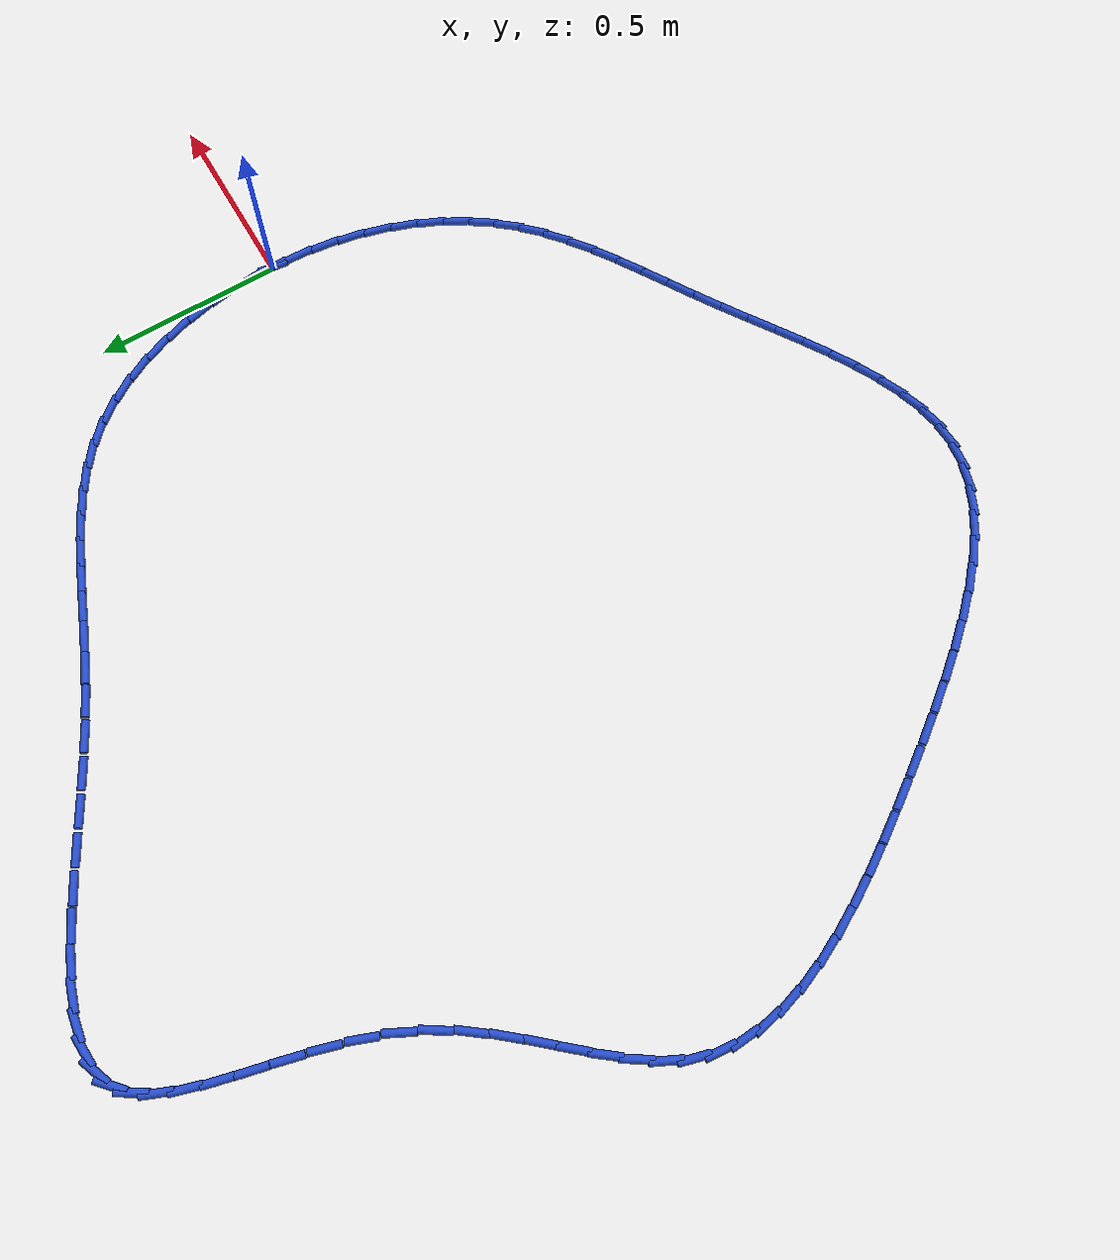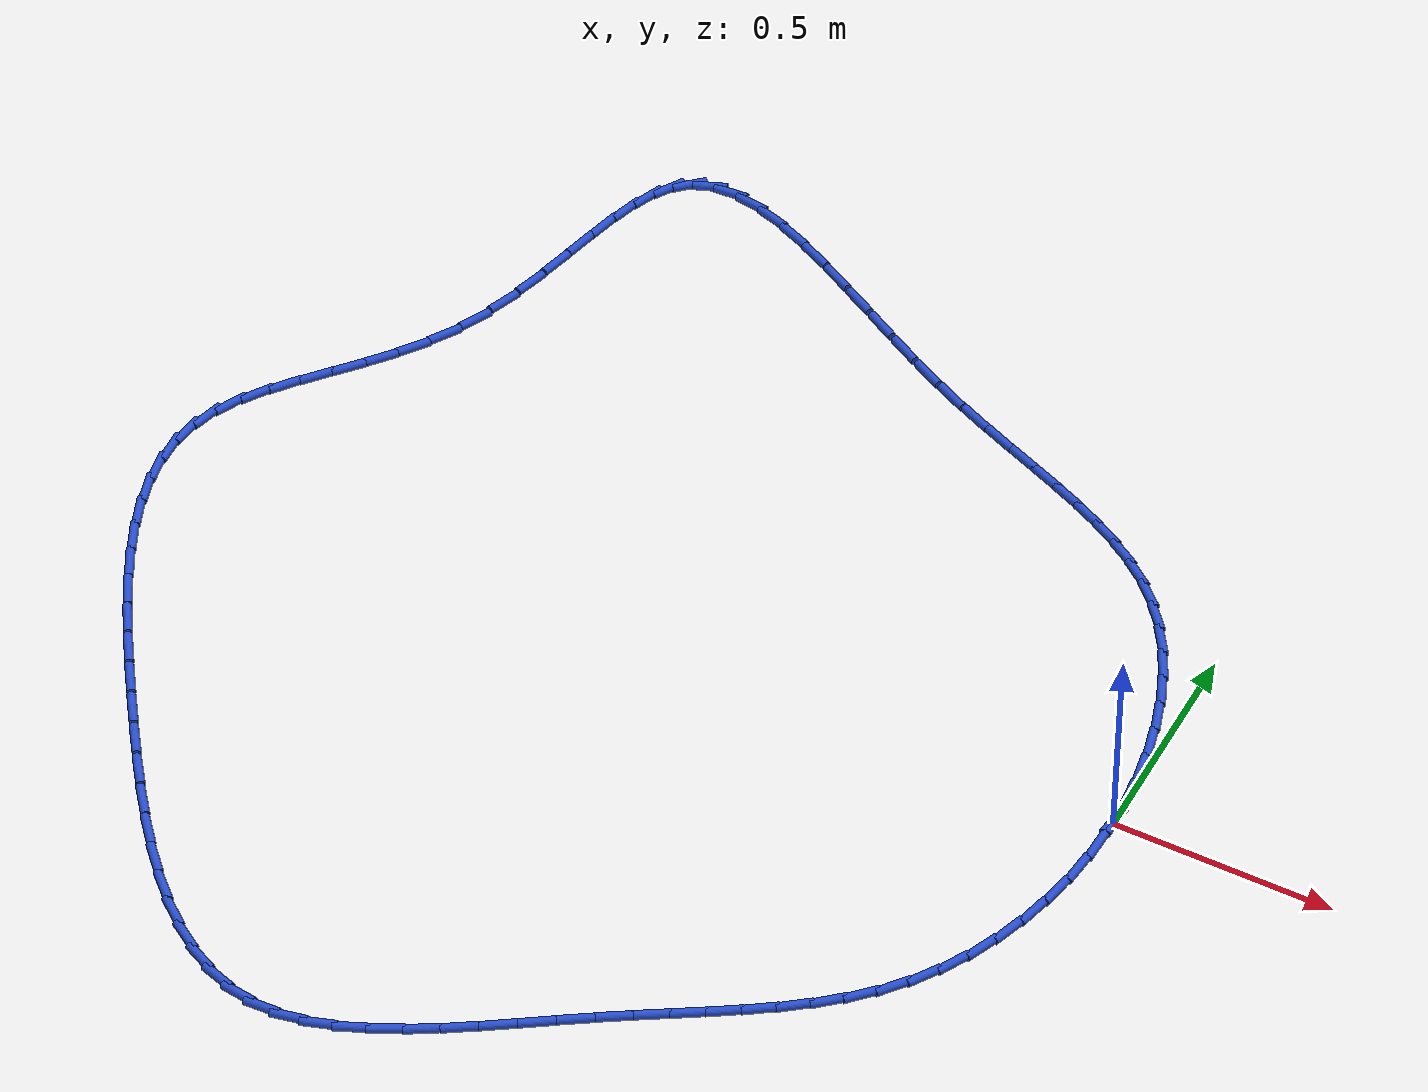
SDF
<sdf version="1.6">
 <world name="default">
  <light name="sun" type="directional">
   <pose>0 0 10 0 -0 0</pose>
   <diffuse>0.8 0.8 0.8 1</diffuse>
   <specular>0.2 0.2 0.2 1</specular>
   <attenuation>
    <range>1000</range>
    <constant>0.9</constant>
    <linear>0.01</linear>
    <quadratic>0.001</quadratic>
   </attenuation>
   <direction>-0.5 0.1 -0.9</direction>
  </light>
  <model name="ground_plane">
   <static>1</static>
   <link name="link">
    <collision name="collision">
     <geometry><plane><normal>0 0 1</normal><size>100 100</size></plane></geometry>
     <surface><friction><ode><mu>100</mu><mu2>50</mu2></ode></friction></surface>
    </collision>
    <visual name="visual">
     <cast_shadows>0</cast_shadows>
     <geometry><plane><normal>0 0 1</normal><size>100 100</size></plane></geometry>
     <material>
      <script><uri>file://media/materials/scripts/gazebo.material</uri><name>Gazebo/WhiteGlow</name></script>
     </material>
    </visual>
   </link>
  </model>
  <gravity>0 0 -9.8</gravity>
  <magnetic_field>6e-06 2.3e-05 -4.2e-05</magnetic_field>
  <atmosphere type="adiabatic"/>
  <physics name="default_physics" default="0" type="ode">
   <max_step_size>0.001</max_step_size>
   <real_time_factor>1</real_time_factor>
   <real_time_update_rate>1000</real_time_update_rate>
  </physics>
  <scene><ambient>0.4 0.4 0.4 1</ambient><background>0.7 0.7 0.7 1</background><shadows>1</shadows></scene>
  <spherical_coordinates>
   <surface_model>EARTH_WGS84</surface_model>
   <latitude_deg>0</latitude_deg>
   <longitude_deg>0</longitude_deg>
   <elevation>0</elevation>
   <heading_deg>0</heading_deg>
  </spherical_coordinates>
  <model name="line">
   <link name="link_0">
    <pose>8.326672684688674e-17 2.7755575615628914e-17 0.01 0 1.57 -1.534971366516356</pose>
    <collision name="collision">
     <geometry><cylinder><radius>0.01</radius><length>0.08</length></cylinder></geometry>
    </collision>
    <visual name="visual">
     <material>
      <script><name>Gazebo/Blue</name><uri>file://media/materials/scripts/gazebo.material</uri></script>
     </material>
     <geometry><cylinder><radius>0.01</radius><length>0.08</length></cylinder></geometry>
    </visual>
   </link>
   <link name="link_1">
    <pose>-0.0027504168498232564 0.07674091119606674 0.01 0 1.57 -1.4660480376224994</pose>
    <collision name="collision">
     <geometry><cylinder><radius>0.01</radius><length>0.08</length></cylinder></geometry>
    </collision>
    <visual name="visual">
     <material>
      <script><name>Gazebo/Blue</name><uri>file://media/materials/scripts/gazebo.material</uri></script>
     </material>
     <geometry><cylinder><radius>0.01</radius><length>0.08</length></cylinder></geometry>
    </visual>
   </link>
   <link name="link_2">
    <pose>-0.010775239963530671 0.15307105163551565 0.01 0 1.57 -1.3964733640628442</pose>
    <collision name="collision">
     <geometry><cylinder><radius>0.01</radius><length>0.08</length></cylinder></geometry>
    </collision>
    <visual name="visual">
     <material>
      <script><name>Gazebo/Blue</name><uri>file://media/materials/scripts/gazebo.material</uri></script>
     </material>
     <geometry><cylinder><radius>0.01</radius><length>0.08</length></cylinder></geometry>
    </visual>
   </link>
   <link name="link_3">
    <pose>-0.024000763963803497 0.22816892558651733 0.01 0 1.57 -1.3246391387074645</pose>
    <collision name="collision">
     <geometry><cylinder><radius>0.01</radius><length>0.08</length></cylinder></geometry>
    </collision>
    <visual name="visual">
     <material>
      <script><name>Gazebo/Blue</name><uri>file://media/materials/scripts/gazebo.material</uri></script>
     </material>
     <geometry><cylinder><radius>0.01</radius><length>0.08</length></cylinder></geometry>
    </visual>
   </link>
   <link name="link_4">
    <pose>-0.042353283473323004 0.3012130373172426 0.01 0 1.57 -1.2488381085418203</pose>
    <collision name="collision">
     <geometry><cylinder><radius>0.01</radius><length>0.08</length></cylinder></geometry>
    </collision>
    <visual name="visual">
     <material>
      <script><name>Gazebo/Blue</name><uri>file://media/materials/scripts/gazebo.material</uri></script>
     </material>
     <geometry><cylinder><radius>0.01</radius><length>0.08</length></cylinder></geometry>
    </visual>
   </link>
   <link name="link_5">
    <pose>-0.06575909311477052 0.37138189109586206 0.01 0 1.57 -1.1672098814061884</pose>
    <collision name="collision">
     <geometry><cylinder><radius>0.01</radius><length>0.08</length></cylinder></geometry>
    </collision>
    <visual name="visual">
     <material>
      <script><name>Gazebo/Blue</name><uri>file://media/materials/scripts/gazebo.material</uri></script>
     </material>
     <geometry><cylinder><radius>0.01</radius><length>0.08</length></cylinder></geometry>
    </visual>
   </link>
   <link name="link_6">
    <pose>-0.0941444875108273 0.4378539911905464 0.01 0 1.57 -1.0777123943756293</pose>
    <collision name="collision">
     <geometry><cylinder><radius>0.01</radius><length>0.08</length></cylinder></geometry>
    </collision>
    <visual name="visual">
     <material>
      <script><name>Gazebo/Blue</name><uri>file://media/materials/scripts/gazebo.material</uri></script>
     </material>
     <geometry><cylinder><radius>0.01</radius><length>0.08</length></cylinder></geometry>
    </visual>
   </link>
   <link name="link_7">
    <pose>-0.12743576128417472 0.49980784186946653 0.01 0 1.57 -0.9781526256269572</pose>
    <collision name="collision">
     <geometry><cylinder><radius>0.01</radius><length>0.08</length></cylinder></geometry>
    </collision>
    <visual name="visual">
     <material>
      <script><name>Gazebo/Blue</name><uri>file://media/materials/scripts/gazebo.material</uri></script>
     </material>
     <geometry><cylinder><radius>0.01</radius><length>0.08</length></cylinder></geometry>
    </visual>
   </link>
   <link name="link_8">
    <pose>-0.165559209057494 0.5564219474007928 0.01 0 1.57 -0.8665463786448813</pose>
    <collision name="collision">
     <geometry><cylinder><radius>0.01</radius><length>0.08</length></cylinder></geometry>
    </collision>
    <visual name="visual">
     <material>
      <script><name>Gazebo/Blue</name><uri>file://media/materials/scripts/gazebo.material</uri></script>
     </material>
     <geometry><cylinder><radius>0.01</radius><length>0.08</length></cylinder></geometry>
    </visual>
   </link>
   <link name="link_9">
    <pose>-0.2084388905782632 0.6068935943886339 0.01 0 1.57 -0.7506815042670751</pose>
    <collision name="collision">
     <geometry><cylinder><radius>0.01</radius><length>0.08</length></cylinder></geometry>
    </collision>
    <visual name="visual">
     <material>
      <script><name>Gazebo/Blue</name><uri>file://media/materials/scripts/gazebo.material</uri></script>
     </material>
     <geometry><cylinder><radius>0.01</radius><length>0.08</length></cylinder></geometry>
    </visual>
   </link>
   <link name="link_10">
    <pose>-0.25590881486853495 0.651176873653255 0.01 0 1.57 -0.6461696639068526</pose>
    <collision name="collision">
     <geometry><cylinder><radius>0.01</radius><length>0.08</length></cylinder></geometry>
    </collision>
    <visual name="visual">
     <material>
      <script><name>Gazebo/Blue</name><uri>file://media/materials/scripts/gazebo.material</uri></script>
     </material>
     <geometry><cylinder><radius>0.01</radius><length>0.08</length></cylinder></geometry>
    </visual>
   </link>
   <link name="link_11">
    <pose>-0.30768414423684315 0.6902246874452825 0.01 0 1.57 -0.558164204604309</pose>
    <collision name="collision">
     <geometry><cylinder><radius>0.01</radius><length>0.08</length></cylinder></geometry>
    </collision>
    <visual name="visual">
     <material>
      <script><name>Gazebo/Blue</name><uri>file://media/materials/scripts/gazebo.material</uri></script>
     </material>
     <geometry><cylinder><radius>0.01</radius><length>0.08</length></cylinder></geometry>
    </visual>
   </link>
   <link name="link_12">
    <pose>-0.3634719075739825 0.7250582928765368 0.01 0 1.57 -0.48869351062040484</pose>
    <collision name="collision">
     <geometry><cylinder><radius>0.01</radius><length>0.08</length></cylinder></geometry>
    </collision>
    <visual name="visual">
     <material>
      <script><name>Gazebo/Blue</name><uri>file://media/materials/scripts/gazebo.material</uri></script>
     </material>
     <geometry><cylinder><radius>0.01</radius><length>0.08</length></cylinder></geometry>
    </visual>
   </link>
   <link name="link_13">
    <pose>-0.4229791337707474 0.7566989470588374 0.01 0 1.57 -0.4379297671276158</pose>
    <collision name="collision">
     <geometry><cylinder><radius>0.01</radius><length>0.08</length></cylinder></geometry>
    </collision>
    <visual name="visual">
     <material>
      <script><name>Gazebo/Blue</name><uri>file://media/materials/scripts/gazebo.material</uri></script>
     </material>
     <geometry><cylinder><radius>0.01</radius><length>0.08</length></cylinder></geometry>
    </visual>
   </link>
   <link name="link_14">
    <pose>-0.4859128517179328 0.7861679071040055 0.01 0 1.57 -0.40494283494107175</pose>
    <collision name="collision">
     <geometry><cylinder><radius>0.01</radius><length>0.08</length></cylinder></geometry>
    </collision>
    <visual name="visual">
     <material>
      <script><name>Gazebo/Blue</name><uri>file://media/materials/scripts/gazebo.material</uri></script>
     </material>
     <geometry><cylinder><radius>0.01</radius><length>0.08</length></cylinder></geometry>
    </visual>
   </link>
   <link name="link_15">
    <pose>-0.551980090306333 0.8144864301238609 0.01 0 1.57 -0.38831615004973147</pose>
    <collision name="collision">
     <geometry><cylinder><radius>0.01</radius><length>0.08</length></cylinder></geometry>
    </collision>
    <visual name="visual">
     <material>
      <script><name>Gazebo/Blue</name><uri>file://media/materials/scripts/gazebo.material</uri></script>
     </material>
     <geometry><cylinder><radius>0.01</radius><length>0.08</length></cylinder></geometry>
    </visual>
   </link>
   <link name="link_16">
    <pose>-0.6208878784267426 0.8426757732302241 0.01 0 1.57 -0.3865152841855497</pose>
    <collision name="collision">
     <geometry><cylinder><radius>0.01</radius><length>0.08</length></cylinder></geometry>
    </collision>
    <visual name="visual">
     <material>
      <script><name>Gazebo/Blue</name><uri>file://media/materials/scripts/gazebo.material</uri></script>
     </material>
     <geometry><cylinder><radius>0.01</radius><length>0.08</length></cylinder></geometry>
    </visual>
   </link>
   <link name="link_17">
    <pose>-0.6923432449699567 0.8717571935349153 0.01 0 1.57 -0.39804960495086894</pose>
    <collision name="collision">
     <geometry><cylinder><radius>0.01</radius><length>0.08</length></cylinder></geometry>
    </collision>
    <visual name="visual">
     <material>
      <script><name>Gazebo/Blue</name><uri>file://media/materials/scripts/gazebo.material</uri></script>
     </material>
     <geometry><cylinder><radius>0.01</radius><length>0.08</length></cylinder></geometry>
    </visual>
   </link>
   <link name="link_18">
    <pose>-0.7660532188267689 0.9027519481497549 0.01 0 1.57 -0.4215027202293307</pose>
    <collision name="collision">
     <geometry><cylinder><radius>0.01</radius><length>0.08</length></cylinder></geometry>
    </collision>
    <visual name="visual">
     <material>
      <script><name>Gazebo/Blue</name><uri>file://media/materials/scripts/gazebo.material</uri></script>
     </material>
     <geometry><cylinder><radius>0.01</radius><length>0.08</length></cylinder></geometry>
    </visual>
   </link>
   <link name="link_19">
    <pose>-0.8417248288879751 0.9366812941865634 0.01 0 1.57 -0.45520356552152275</pose>
    <collision name="collision">
     <geometry><cylinder><radius>0.01</radius><length>0.08</length></cylinder></geometry>
    </collision>
    <visual name="visual">
     <material>
      <script><name>Gazebo/Blue</name><uri>file://media/materials/scripts/gazebo.material</uri></script>
     </material>
     <geometry><cylinder><radius>0.01</radius><length>0.08</length></cylinder></geometry>
    </visual>
   </link>
   <link name="link_20">
    <pose>-0.9190590654157905 0.9745355579508018 0.01 0 1.57 -0.4874914291404276</pose>
    <collision name="collision">
     <geometry><cylinder><radius>0.01</radius><length>0.08</length></cylinder></geometry>
    </collision>
    <visual name="visual">
     <material>
      <script><name>Gazebo/Blue</name><uri>file://media/materials/scripts/gazebo.material</uri></script>
     </material>
     <geometry><cylinder><radius>0.01</radius><length>0.08</length></cylinder></geometry>
    </visual>
   </link>
   <link name="link_21">
    <pose>-0.9975290755228148 1.0161380172617416 0.01 0 1.57 -0.5062014920605112</pose>
    <collision name="collision">
     <geometry><cylinder><radius>0.01</radius><length>0.08</length></cylinder></geometry>
    </collision>
    <visual name="visual">
     <material>
      <script><name>Gazebo/Blue</name><uri>file://media/materials/scripts/gazebo.material</uri></script>
     </material>
     <geometry><cylinder><radius>0.01</radius><length>0.08</length></cylinder></geometry>
    </visual>
   </link>
   <link name="link_22">
    <pose>-1.076315965819279 1.0598160725038117 0.01 0 1.57 -0.5119875170048173</pose>
    <collision name="collision">
     <geometry><cylinder><radius>0.01</radius><length>0.08</length></cylinder></geometry>
    </collision>
    <visual name="visual">
     <material>
      <script><name>Gazebo/Blue</name><uri>file://media/materials/scripts/gazebo.material</uri></script>
     </material>
     <geometry><cylinder><radius>0.01</radius><length>0.08</length></cylinder></geometry>
    </visual>
   </link>
   <link name="link_23">
    <pose>-1.1545817162901129 1.1037991544751697 0.01 0 1.57 -0.50502599688531</pose>
    <collision name="collision">
     <geometry><cylinder><radius>0.01</radius><length>0.08</length></cylinder></geometry>
    </collision>
    <visual name="visual">
     <material>
      <script><name>Gazebo/Blue</name><uri>file://media/materials/scripts/gazebo.material</uri></script>
     </material>
     <geometry><cylinder><radius>0.01</radius><length>0.08</length></cylinder></geometry>
    </visual>
   </link>
   <link name="link_24">
    <pose>-1.231488306920247 1.146316693973973 0.01 0 1.57 -0.4840657556172488</pose>
    <collision name="collision">
     <geometry><cylinder><radius>0.01</radius><length>0.08</length></cylinder></geometry>
    </collision>
    <visual name="visual">
     <material>
      <script><name>Gazebo/Blue</name><uri>file://media/materials/scripts/gazebo.material</uri></script>
     </material>
     <geometry><cylinder><radius>0.01</radius><length>0.08</length></cylinder></geometry>
    </visual>
   </link>
   <link name="link_25">
    <pose>-1.306197717694612 1.185598121798379 0.01 0 1.57 -0.4460575910382503</pose>
    <collision name="collision">
     <geometry><cylinder><radius>0.01</radius><length>0.08</length></cylinder></geometry>
    </collision>
    <visual name="visual">
     <material>
      <script><name>Gazebo/Blue</name><uri>file://media/materials/scripts/gazebo.material</uri></script>
     </material>
     <geometry><cylinder><radius>0.01</radius><length>0.08</length></cylinder></geometry>
    </visual>
   </link>
   <link name="link_26">
    <pose>-1.377871928598138 1.2198728687465452 0.01 0 1.57 -0.3852918800735932</pose>
    <collision name="collision">
     <geometry><cylinder><radius>0.01</radius><length>0.08</length></cylinder></geometry>
    </collision>
    <visual name="visual">
     <material>
      <script><name>Gazebo/Blue</name><uri>file://media/materials/scripts/gazebo.material</uri></script>
     </material>
     <geometry><cylinder><radius>0.01</radius><length>0.08</length></cylinder></geometry>
    </visual>
   </link>
   <link name="link_27">
    <pose>-1.4456729196157552 1.2473703656166288 0.01 0 1.57 -0.2917876177228118</pose>
    <collision name="collision">
     <geometry><cylinder><radius>0.01</radius><length>0.08</length></cylinder></geometry>
    </collision>
    <visual name="visual">
     <material>
      <script><name>Gazebo/Blue</name><uri>file://media/materials/scripts/gazebo.material</uri></script>
     </material>
     <geometry><cylinder><radius>0.01</radius><length>0.08</length></cylinder></geometry>
    </visual>
   </link>
   <link name="link_28">
    <pose>-1.5087626707323938 1.266320043206787 0.01 0 1.57 -0.14889360916514088</pose>
    <collision name="collision">
     <geometry><cylinder><radius>0.01</radius><length>0.08</length></cylinder></geometry>
    </collision>
    <visual name="visual">
     <material>
      <script><name>Gazebo/Blue</name><uri>file://media/materials/scripts/gazebo.material</uri></script>
     </material>
     <geometry><cylinder><radius>0.01</radius><length>0.08</length></cylinder></geometry>
    </visual>
   </link>
   <link name="link_29">
    <pose>-1.566303161932984 1.2749513323151775 0.01 0 1.57 0.06749169509626238</pose>
    <collision name="collision">
     <geometry><cylinder><radius>0.01</radius><length>0.08</length></cylinder></geometry>
    </collision>
    <visual name="visual">
     <material>
      <script><name>Gazebo/Blue</name><uri>file://media/materials/scripts/gazebo.material</uri></script>
     </material>
     <geometry><cylinder><radius>0.01</radius><length>0.08</length></cylinder></geometry>
    </visual>
   </link>
   <link name="link_30">
    <pose>-1.6174563732024565 1.2714936637399579 0.01 0 1.57 0.37551241371588023</pose>
    <collision name="collision">
     <geometry><cylinder><radius>0.01</radius><length>0.08</length></cylinder></geometry>
    </collision>
    <visual name="visual">
     <material>
      <script><name>Gazebo/Blue</name><uri>file://media/materials/scripts/gazebo.material</uri></script>
     </material>
     <geometry><cylinder><radius>0.01</radius><length>0.08</length></cylinder></geometry>
    </visual>
   </link>
   <link name="link_31">
    <pose>-1.6613842845257418 1.2541764682792855 0.01 0 1.57 0.7348082425206236</pose>
    <collision name="collision">
     <geometry><cylinder><radius>0.01</radius><length>0.08</length></cylinder></geometry>
    </collision>
    <visual name="visual">
     <material>
      <script><name>Gazebo/Blue</name><uri>file://media/materials/scripts/gazebo.material</uri></script>
     </material>
     <geometry><cylinder><radius>0.01</radius><length>0.08</length></cylinder></geometry>
    </visual>
   </link>
   <link name="link_32">
    <pose>-1.6974618193519417 1.2215763001079891 0.01 0 1.57 1.0113614608048263</pose>
    <collision name="collision">
     <geometry><cylinder><radius>0.01</radius><length>0.08</length></cylinder></geometry>
    </collision>
    <visual name="visual">
     <material>
      <script><name>Gazebo/Blue</name><uri>file://media/materials/scripts/gazebo.material</uri></script>
     </material>
     <geometry><cylinder><radius>0.01</radius><length>0.08</length></cylinder></geometry>
    </visual>
   </link>
   <link name="link_33">
    <pose>-1.7266830547027 1.1749091278465917 0.01 0 1.57 1.1788019623049384</pose>
    <collision name="collision">
     <geometry><cylinder><radius>0.01</radius><length>0.08</length></cylinder></geometry>
    </collision>
    <visual name="visual">
     <material>
      <script><name>Gazebo/Blue</name><uri>file://media/materials/scripts/gazebo.material</uri></script>
     </material>
     <geometry><cylinder><radius>0.01</radius><length>0.08</length></cylinder></geometry>
    </visual>
   </link>
   <link name="link_34">
    <pose>-1.7507859179048064 1.1166034852941933 0.01 0 1.57 1.2729162699449168</pose>
    <collision name="collision">
     <geometry><cylinder><radius>0.01</radius><length>0.08</length></cylinder></geometry>
    </collision>
    <visual name="visual">
     <material>
      <script><name>Gazebo/Blue</name><uri>file://media/materials/scripts/gazebo.material</uri></script>
     </material>
     <geometry><cylinder><radius>0.01</radius><length>0.08</length></cylinder></geometry>
    </visual>
   </link>
   <link name="link_35">
    <pose>-1.7715122517919182 1.0490942889955266 0.01 0 1.57 1.3192120151923188</pose>
    <collision name="collision">
     <geometry><cylinder><radius>0.01</radius><length>0.08</length></cylinder></geometry>
    </collision>
    <visual name="visual">
     <material>
      <script><name>Gazebo/Blue</name><uri>file://media/materials/scripts/gazebo.material</uri></script>
     </material>
     <geometry><cylinder><radius>0.01</radius><length>0.08</length></cylinder></geometry>
    </visual>
   </link>
   <link name="link_36">
    <pose>-1.7906038991976951 0.9748164554953253 0.01 0 1.57 1.3312615368587786</pose>
    <collision name="collision">
     <geometry><cylinder><radius>0.01</radius><length>0.08</length></cylinder></geometry>
    </collision>
    <visual name="visual">
     <material>
      <script><name>Gazebo/Blue</name><uri>file://media/materials/scripts/gazebo.material</uri></script>
     </material>
     <geometry><cylinder><radius>0.01</radius><length>0.08</length></cylinder></geometry>
    </visual>
   </link>
   <link name="link_37">
    <pose>-1.8098027029557957 0.896204901338321 0.01 0 1.57 1.31508951511062</pose>
    <collision name="collision">
     <geometry><cylinder><radius>0.01</radius><length>0.08</length></cylinder></geometry>
    </collision>
    <visual name="visual">
     <material>
      <script><name>Gazebo/Blue</name><uri>file://media/materials/scripts/gazebo.material</uri></script>
     </material>
     <geometry><cylinder><radius>0.01</radius><length>0.08</length></cylinder></geometry>
    </visual>
   </link>
   <link name="link_38">
    <pose>-1.8308505058998792 0.8156945430692476 0.01 0 1.57 1.2719412239540295</pose>
    <collision name="collision">
     <geometry><cylinder><radius>0.01</radius><length>0.08</length></cylinder></geometry>
    </collision>
    <visual name="visual">
     <material>
      <script><name>Gazebo/Blue</name><uri>file://media/materials/scripts/gazebo.material</uri></script>
     </material>
     <geometry><cylinder><radius>0.01</radius><length>0.08</length></cylinder></geometry>
    </visual>
   </link>
   <link name="link_39">
    <pose>-1.8554891508636033 0.7357202972328377 0.01 0 1.57 1.1996159026655107</pose>
    <collision name="collision">
     <geometry><cylinder><radius>0.01</radius><length>0.08</length></cylinder></geometry>
    </collision>
    <visual name="visual">
     <material>
      <script><name>Gazebo/Blue</name><uri>file://media/materials/scripts/gazebo.material</uri></script>
     </material>
     <geometry><cylinder><radius>0.01</radius><length>0.08</length></cylinder></geometry>
    </visual>
   </link>
   <link name="link_40">
    <pose>-1.8854604806806279 0.6587170803738243 0.01 0 1.57 1.0963272057641043</pose>
    <collision name="collision">
     <geometry><cylinder><radius>0.01</radius><length>0.08</length></cylinder></geometry>
    </collision>
    <visual name="visual">
     <material>
      <script><name>Gazebo/Blue</name><uri>file://media/materials/scripts/gazebo.material</uri></script>
     </material>
     <geometry><cylinder><radius>0.01</radius><length>0.08</length></cylinder></geometry>
    </visual>
   </link>
   <link name="link_41">
    <pose>-1.9223186851652974 0.5869528050474662 0.01 0 1.57 0.9940725452062862</pose>
    <collision name="collision">
     <geometry><cylinder><radius>0.01</radius><length>0.08</length></cylinder></geometry>
    </collision>
    <visual name="visual">
     <material>
      <script><name>Gazebo/Blue</name><uri>file://media/materials/scripts/gazebo.material</uri></script>
     </material>
     <geometry><cylinder><radius>0.01</radius><length>0.08</length></cylinder></geometry>
    </visual>
   </link>
   <link name="link_42">
    <pose>-1.9654011950748433 0.5207225532753254 0.01 0 1.57 0.9177125563174512</pose>
    <collision name="collision">
     <geometry><cylinder><radius>0.01</radius><length>0.08</length></cylinder></geometry>
    </collision>
    <visual name="visual">
     <material>
      <script><name>Gazebo/Blue</name><uri>file://media/materials/scripts/gazebo.material</uri></script>
     </material>
     <geometry><cylinder><radius>0.01</radius><length>0.08</length></cylinder></geometry>
    </visual>
   </link>
   <link name="link_43">
    <pose>-2.0125983353400203 0.45903353839932376 0.01 0 1.57 0.8689142602185799</pose>
    <collision name="collision">
     <geometry><cylinder><radius>0.01</radius><length>0.08</length></cylinder></geometry>
    </collision>
    <visual name="visual">
     <material>
      <script><name>Gazebo/Blue</name><uri>file://media/materials/scripts/gazebo.material</uri></script>
     </material>
     <geometry><cylinder><radius>0.01</radius><length>0.08</length></cylinder></geometry>
    </visual>
   </link>
   <link name="link_44">
    <pose>-2.0617755398999487 0.40087082173356214 0.01 0 1.57 0.8486403337509719</pose>
    <collision name="collision">
     <geometry><cylinder><radius>0.01</radius><length>0.08</length></cylinder></geometry>
    </collision>
    <visual name="visual">
     <material>
      <script><name>Gazebo/Blue</name><uri>file://media/materials/scripts/gazebo.material</uri></script>
     </material>
     <geometry><cylinder><radius>0.01</radius><length>0.08</length></cylinder></geometry>
    </visual>
   </link>
   <link name="link_45">
    <pose>-2.110798242693749 0.3452194645921408 0.01 0 1.57 0.8588253020771366</pose>
    <collision name="collision">
     <geometry><cylinder><radius>0.01</radius><length>0.08</length></cylinder></geometry>
    </collision>
    <visual name="visual">
     <material>
      <script><name>Gazebo/Blue</name><uri>file://media/materials/scripts/gazebo.material</uri></script>
     </material>
     <geometry><cylinder><radius>0.01</radius><length>0.08</length></cylinder></geometry>
    </visual>
   </link>
   <link name="link_46">
    <pose>-2.1575318776605417 0.29106452828915985 0.01 0 1.57 0.903239353629312</pose>
    <collision name="collision">
     <geometry><cylinder><radius>0.01</radius><length>0.08</length></cylinder></geometry>
    </collision>
    <visual name="visual">
     <material>
      <script><name>Gazebo/Blue</name><uri>file://media/materials/scripts/gazebo.material</uri></script>
     </material>
     <geometry><cylinder><radius>0.01</radius><length>0.08</length></cylinder></geometry>
    </visual>
   </link>
   <link name="link_47">
    <pose>-2.1998418787394476 0.23739107413871985 0.01 0 1.57 0.98774155802695</pose>
    <collision name="collision">
     <geometry><cylinder><radius>0.01</radius><length>0.08</length></cylinder></geometry>
    </collision>
    <visual name="visual">
     <material>
      <script><name>Gazebo/Blue</name><uri>file://media/materials/scripts/gazebo.material</uri></script>
     </material>
     <geometry><cylinder><radius>0.01</radius><length>0.08</length></cylinder></geometry>
    </visual>
   </link>
   <link name="link_48">
    <pose>-2.235593679869586 0.18318416345492114 0.01 0 1.57 1.1189634226634355</pose>
    <collision name="collision">
     <geometry><cylinder><radius>0.01</radius><length>0.08</length></cylinder></geometry>
    </collision>
    <visual name="visual">
     <material>
      <script><name>Gazebo/Blue</name><uri>file://media/materials/scripts/gazebo.material</uri></script>
     </material>
     <geometry><cylinder><radius>0.01</radius><length>0.08</length></cylinder></geometry>
    </visual>
   </link>
   <link name="link_49">
    <pose>-2.2626527149900793 0.12742885755186356 0.01 0 1.57 1.2944844709665573</pose>
    <collision name="collision">
     <geometry><cylinder><radius>0.01</radius><length>0.08</length></cylinder></geometry>
    </collision>
    <visual name="visual">
     <material>
      <script><name>Gazebo/Blue</name><uri>file://media/materials/scripts/gazebo.material</uri></script>
     </material>
     <geometry><cylinder><radius>0.01</radius><length>0.08</length></cylinder></geometry>
    </visual>
   </link>
   <link name="link_50">
    <pose>-2.2791574478478567 0.06922453825485926 0.01 0 1.57 1.4719067428108472</pose>
    <collision name="collision">
     <geometry><cylinder><radius>0.01</radius><length>0.08</length></cylinder></geometry>
    </collision>
    <visual name="visual">
     <material>
      <script><name>Gazebo/Blue</name><uri>file://media/materials/scripts/gazebo.material</uri></script>
     </material>
     <geometry><cylinder><radius>0.01</radius><length>0.08</length></cylinder></geometry>
    </visual>
   </link>
   <link name="link_51">
    <pose>-2.2851839221699675 0.008481872924739113 0.01 0 1.57 -1.5147176158891782</pose>
    <collision name="collision">
     <geometry><cylinder><radius>0.01</radius><length>0.08</length></cylinder></geometry>
    </collision>
    <visual name="visual">
     <material>
      <script><name>Gazebo/Blue</name><uri>file://media/materials/scripts/gazebo.material</uri></script>
     </material>
     <geometry><cylinder><radius>0.01</radius><length>0.08</length></cylinder></geometry>
    </visual>
   </link>
   <link name="link_52">
    <pose>-2.2816461620638826 -0.054537599697563284 0.01 0 1.57 -1.3855839055748287</pose>
    <collision name="collision">
     <geometry><cylinder><radius>0.01</radius><length>0.08</length></cylinder></geometry>
    </collision>
    <visual name="visual">
     <material>
      <script><name>Gazebo/Blue</name><uri>file://media/materials/scripts/gazebo.material</uri></script>
     </material>
     <geometry><cylinder><radius>0.01</radius><length>0.08</length></cylinder></geometry>
    </visual>
   </link>
   <link name="link_53">
    <pose>-2.269461534019126 -0.11957094137987354 0.01 0 1.57 -1.2810046591166075</pose>
    <collision name="collision">
     <geometry><cylinder><radius>0.01</radius><length>0.08</length></cylinder></geometry>
    </collision>
    <visual name="visual">
     <material>
      <script><name>Gazebo/Blue</name><uri>file://media/materials/scripts/gazebo.material</uri></script>
     </material>
     <geometry><cylinder><radius>0.01</radius><length>0.08</length></cylinder></geometry>
    </visual>
   </link>
   <link name="link_54">
    <pose>-2.249547404525214 -0.1863552138900169 0.01 0 1.57 -1.1976685030007252</pose>
    <collision name="collision">
     <geometry><cylinder><radius>0.01</radius><length>0.08</length></cylinder></geometry>
    </collision>
    <visual name="visual">
     <material>
      <script><name>Gazebo/Blue</name><uri>file://media/materials/scripts/gazebo.material</uri></script>
     </material>
     <geometry><cylinder><radius>0.01</radius><length>0.08</length></cylinder></geometry>
    </visual>
   </link>
   <link name="link_55">
    <pose>-2.22282114007167 -0.2546274789958191 0.01 0 1.57 -1.131938889039625</pose>
    <collision name="collision">
     <geometry><cylinder><radius>0.01</radius><length>0.08</length></cylinder></geometry>
    </collision>
    <visual name="visual">
     <material>
      <script><name>Gazebo/Blue</name><uri>file://media/materials/scripts/gazebo.material</uri></script>
     </material>
     <geometry><cylinder><radius>0.01</radius><length>0.08</length></cylinder></geometry>
    </visual>
   </link>
   <link name="link_56">
    <pose>-2.190200107148015 -0.32412479846510567 0.01 0 1.57 -1.0806172701092598</pose>
    <collision name="collision">
     <geometry><cylinder><radius>0.01</radius><length>0.08</length></cylinder></geometry>
    </collision>
    <visual name="visual">
     <material>
      <script><name>Gazebo/Blue</name><uri>file://media/materials/scripts/gazebo.material</uri></script>
     </material>
     <geometry><cylinder><radius>0.01</radius><length>0.08</length></cylinder></geometry>
    </visual>
   </link>
   <link name="link_57">
    <pose>-2.152601672243768 -0.3945842340657019 0.01 0 1.57 -1.0411580817766826</pose>
    <collision name="collision">
     <geometry><cylinder><radius>0.01</radius><length>0.08</length></cylinder></geometry>
    </collision>
    <visual name="visual">
     <material>
      <script><name>Gazebo/Blue</name><uri>file://media/materials/scripts/gazebo.material</uri></script>
     </material>
     <geometry><cylinder><radius>0.01</radius><length>0.08</length></cylinder></geometry>
    </visual>
   </link>
   <link name="link_58">
    <pose>-2.1109432018484524 -0.4657428475654327 0.01 0 1.57 -1.0116512425495963</pose>
    <collision name="collision">
     <geometry><cylinder><radius>0.01</radius><length>0.08</length></cylinder></geometry>
    </collision>
    <visual name="visual">
     <material>
      <script><name>Gazebo/Blue</name><uri>file://media/materials/scripts/gazebo.material</uri></script>
     </material>
     <geometry><cylinder><radius>0.01</radius><length>0.08</length></cylinder></geometry>
    </visual>
   </link>
   <link name="link_59">
    <pose>-2.0661420624515867 -0.537337700732125 0.01 0 1.57 -0.9907357741987575</pose>
    <collision name="collision">
     <geometry><cylinder><radius>0.01</radius><length>0.08</length></cylinder></geometry>
    </collision>
    <visual name="visual">
     <material>
      <script><name>Gazebo/Blue</name><uri>file://media/materials/scripts/gazebo.material</uri></script>
     </material>
     <geometry><cylinder><radius>0.01</radius><length>0.08</length></cylinder></geometry>
    </visual>
   </link>
   <link name="link_60">
    <pose>-2.0191156205426912 -0.6091058553336033 0.01 0 1.57 -0.9774979024718616</pose>
    <collision name="collision">
     <geometry><cylinder><radius>0.01</radius><length>0.08</length></cylinder></geometry>
    </collision>
    <visual name="visual">
     <material>
      <script><name>Gazebo/Blue</name><uri>file://media/materials/scripts/gazebo.material</uri></script>
     </material>
     <geometry><cylinder><radius>0.01</radius><length>0.08</length></cylinder></geometry>
    </visual>
   </link>
   <link name="link_61">
    <pose>-1.970780150472758 -0.6807836873082719 0.01 0 1.57 -0.9677302261456948</pose>
    <collision name="collision">
     <geometry><cylinder><radius>0.01</radius><length>0.08</length></cylinder></geometry>
    </collision>
    <visual name="visual">
     <material>
      <script><name>Gazebo/Blue</name><uri>file://media/materials/scripts/gazebo.material</uri></script>
     </material>
     <geometry><cylinder><radius>0.01</radius><length>0.08</length></cylinder></geometry>
    </visual>
   </link>
   <link name="link_62">
    <pose>-1.921780511769468 -0.7519371324296261 0.01 0 1.57 -0.9525695897564149</pose>
    <collision name="collision">
     <geometry><cylinder><radius>0.01</radius><length>0.08</length></cylinder></geometry>
    </collision>
    <visual name="visual">
     <material>
      <script><name>Gazebo/Blue</name><uri>file://media/materials/scripts/gazebo.material</uri></script>
     </material>
     <geometry><cylinder><radius>0.01</radius><length>0.08</length></cylinder></geometry>
    </visual>
   </link>
   <link name="link_63">
    <pose>-1.8721351348557418 -0.8217387482517347 0.01 0 1.57 -0.9302807833187373</pose>
    <collision name="collision">
     <geometry><cylinder><radius>0.01</radius><length>0.08</length></cylinder></geometry>
    </collision>
    <visual name="visual">
     <material>
      <script><name>Gazebo/Blue</name><uri>file://media/materials/scripts/gazebo.material</uri></script>
     </material>
     <geometry><cylinder><radius>0.01</radius><length>0.08</length></cylinder></geometry>
    </visual>
   </link>
   <link name="link_64">
    <pose>-1.821774358960871 -0.889305773767262 0.01 0 1.57 -0.8999835989794268</pose>
    <collision name="collision">
     <geometry><cylinder><radius>0.01</radius><length>0.08</length></cylinder></geometry>
    </collision>
    <visual name="visual">
     <material>
      <script><name>Gazebo/Blue</name><uri>file://media/materials/scripts/gazebo.material</uri></script>
     </material>
     <geometry><cylinder><radius>0.01</radius><length>0.08</length></cylinder></geometry>
    </visual>
   </link>
   <link name="link_65">
    <pose>-1.7706285233141457 -0.9537554479688719 0.01 0 1.57 -0.8603928390688228</pose>
    <collision name="collision">
     <geometry><cylinder><radius>0.01</radius><length>0.08</length></cylinder></geometry>
    </collision>
    <visual name="visual">
     <material>
      <script><name>Gazebo/Blue</name><uri>file://media/materials/scripts/gazebo.material</uri></script>
     </material>
     <geometry><cylinder><radius>0.01</radius><length>0.08</length></cylinder></geometry>
    </visual>
   </link>
   <link name="link_66">
    <pose>-1.718627967144857 -1.0142050098492288 0.01 0 1.57 -0.8097431682786612</pose>
    <collision name="collision">
     <geometry><cylinder><radius>0.01</radius><length>0.08</length></cylinder></geometry>
    </collision>
    <visual name="visual">
     <material>
      <script><name>Gazebo/Blue</name><uri>file://media/materials/scripts/gazebo.material</uri></script>
     </material>
     <geometry><cylinder><radius>0.01</radius><length>0.08</length></cylinder></geometry>
    </visual>
   </link>
   <link name="link_67">
    <pose>-1.6657030296822966 -1.0697716984009973 0.01 0 1.57 -0.7457166906185455</pose>
    <collision name="collision">
     <geometry><cylinder><radius>0.01</radius><length>0.08</length></cylinder></geometry>
    </collision>
    <visual name="visual">
     <material>
      <script><name>Gazebo/Blue</name><uri>file://media/materials/scripts/gazebo.material</uri></script>
     </material>
     <geometry><cylinder><radius>0.01</radius><length>0.08</length></cylinder></geometry>
    </visual>
   </link>
   <link name="link_68">
    <pose>-1.6117840501557539 -1.119572752616841 0.01 0 1.57 -0.6654290077011995</pose>
    <collision name="collision">
     <geometry><cylinder><radius>0.01</radius><length>0.08</length></cylinder></geometry>
    </collision>
    <visual name="visual">
     <material>
      <script><name>Gazebo/Blue</name><uri>file://media/materials/scripts/gazebo.material</uri></script>
     </material>
     <geometry><cylinder><radius>0.01</radius><length>0.08</length></cylinder></geometry>
    </visual>
   </link>
   <link name="link_69">
    <pose>-1.5568013677945207 -1.1627254114894243 0.01 0 1.57 -0.5656032503127257</pose>
    <collision name="collision">
     <geometry><cylinder><radius>0.01</radius><length>0.08</length></cylinder></geometry>
    </collision>
    <visual name="visual">
     <material>
      <script><name>Gazebo/Blue</name><uri>file://media/materials/scripts/gazebo.material</uri></script>
     </material>
     <geometry><cylinder><radius>0.01</radius><length>0.08</length></cylinder></geometry>
    </visual>
   </link>
   <link name="link_70">
    <pose>-1.5006853218278877 -1.1983469140114118 0.01 0 1.57 -0.44317822642255783</pose>
    <collision name="collision">
     <geometry><cylinder><radius>0.01</radius><length>0.08</length></cylinder></geometry>
    </collision>
    <visual name="visual">
     <material>
      <script><name>Gazebo/Blue</name><uri>file://media/materials/scripts/gazebo.material</uri></script>
     </material>
     <geometry><cylinder><radius>0.01</radius><length>0.08</length></cylinder></geometry>
    </visual>
   </link>
   <link name="link_71">
    <pose>-1.4433662514851462 -1.2255544991754668 0.01 0 1.57 -0.2966686601831821</pose>
    <collision name="collision">
     <geometry><cylinder><radius>0.01</radius><length>0.08</length></cylinder></geometry>
    </collision>
    <visual name="visual">
     <material>
      <script><name>Gazebo/Blue</name><uri>file://media/materials/scripts/gazebo.material</uri></script>
     </material>
     <geometry><cylinder><radius>0.01</radius><length>0.08</length></cylinder></geometry>
    </visual>
   </link>
   <link name="link_72">
    <pose>-1.384774495995586 -1.2434654059742547 0.01 0 1.57 -0.12829097824727664</pose>
    <collision name="collision">
     <geometry><cylinder><radius>0.01</radius><length>0.08</length></cylinder></geometry>
    </collision>
    <visual name="visual">
     <material>
      <script><name>Gazebo/Blue</name><uri>file://media/materials/scripts/gazebo.material</uri></script>
     </material>
     <geometry><cylinder><radius>0.01</radius><length>0.08</length></cylinder></geometry>
    </visual>
   </link>
   <link name="link_73">
    <pose>-1.3248403945884988 -1.2511968734004393 0.01 0 1.57 0.04962462281213054</pose>
    <collision name="collision">
     <geometry><cylinder><radius>0.01</radius><length>0.08</length></cylinder></geometry>
    </collision>
    <visual name="visual">
     <material>
      <script><name>Gazebo/Blue</name><uri>file://media/materials/scripts/gazebo.material</uri></script>
     </material>
     <geometry><cylinder><radius>0.01</radius><length>0.08</length></cylinder></geometry>
    </visual>
   </link>
   <link name="link_74">
    <pose>-1.263525838777014 -1.2481516615687946 0.01 0 1.57 0.20370744721325643</pose>
    <collision name="collision">
     <geometry><cylinder><radius>0.01</radius><length>0.08</length></cylinder></geometry>
    </collision>
    <visual name="visual">
     <material>
      <script><name>Gazebo/Blue</name><uri>file://media/materials/scripts/gazebo.material</uri></script>
     </material>
     <geometry><cylinder><radius>0.01</radius><length>0.08</length></cylinder></geometry>
    </visual>
   </link>
   <link name="link_75">
    <pose>-1.200957850605397 -1.235226820350869 0.01 0 1.57 0.32467081293841</pose>
    <collision name="collision">
     <geometry><cylinder><radius>0.01</radius><length>0.08</length></cylinder></geometry>
    </collision>
    <visual name="visual">
     <material>
      <script><name>Gazebo/Blue</name><uri>file://media/materials/scripts/gazebo.material</uri></script>
     </material>
     <geometry><cylinder><radius>0.01</radius><length>0.08</length></cylinder></geometry>
    </visual>
   </link>
   <link name="link_76">
    <pose>-1.1373172917802814 -1.2138066024112817 0.01 0 1.57 0.41628267210856085</pose>
    <collision name="collision">
     <geometry><cylinder><radius>0.01</radius><length>0.08</length></cylinder></geometry>
    </collision>
    <visual name="visual">
     <material>
      <script><name>Gazebo/Blue</name><uri>file://media/materials/scripts/gazebo.material</uri></script>
     </material>
     <geometry><cylinder><radius>0.01</radius><length>0.08</length></cylinder></geometry>
    </visual>
   </link>
   <link name="link_77">
    <pose>-1.072785053635388 -1.1852755285143701 0.01 0 1.57 0.48350491911340465</pose>
    <collision name="collision">
     <geometry><cylinder><radius>0.01</radius><length>0.08</length></cylinder></geometry>
    </collision>
    <visual name="visual">
     <material>
      <script><name>Gazebo/Blue</name><uri>file://media/materials/scripts/gazebo.material</uri></script>
     </material>
     <geometry><cylinder><radius>0.01</radius><length>0.08</length></cylinder></geometry>
    </visual>
   </link>
   <link name="link_78">
    <pose>-1.0075420275044364 -1.1510181194244709 0.01 0 1.57 0.5306986070223576</pose>
    <collision name="collision">
     <geometry><cylinder><radius>0.01</radius><length>0.08</length></cylinder></geometry>
    </collision>
    <visual name="visual">
     <material>
      <script><name>Gazebo/Blue</name><uri>file://media/materials/scripts/gazebo.material</uri></script>
     </material>
     <geometry><cylinder><radius>0.01</radius><length>0.08</length></cylinder></geometry>
    </visual>
   </link>
   <link name="link_79">
    <pose>-0.9417691047211462 -1.112418895905921 0.01 0 1.57 0.5611001271236981</pose>
    <collision name="collision">
     <geometry><cylinder><radius>0.01</radius><length>0.08</length></cylinder></geometry>
    </collision>
    <visual name="visual">
     <material>
      <script><name>Gazebo/Blue</name><uri>file://media/materials/scripts/gazebo.material</uri></script>
     </material>
     <geometry><cylinder><radius>0.01</radius><length>0.08</length></cylinder></geometry>
    </visual>
   </link>
   <link name="link_80">
    <pose>-0.8756471766192371 -1.0708623787230562 0.01 0 1.57 0.5768073766599484</pose>
    <collision name="collision">
     <geometry><cylinder><radius>0.01</radius><length>0.08</length></cylinder></geometry>
    </collision>
    <visual name="visual">
     <material>
      <script><name>Gazebo/Blue</name><uri>file://media/materials/scripts/gazebo.material</uri></script>
     </material>
     <geometry><cylinder><radius>0.01</radius><length>0.08</length></cylinder></geometry>
    </visual>
   </link>
   <link name="link_81">
    <pose>-0.809357134532429 -1.0277330886402138 0.01 0 1.57 0.5788883035442559</pose>
    <collision name="collision">
     <geometry><cylinder><radius>0.01</radius><length>0.08</length></cylinder></geometry>
    </collision>
    <visual name="visual">
     <material>
      <script><name>Gazebo/Blue</name><uri>file://media/materials/scripts/gazebo.material</uri></script>
     </material>
     <geometry><cylinder><radius>0.01</radius><length>0.08</length></cylinder></geometry>
    </visual>
   </link>
   <link name="link_82">
    <pose>-0.7430798697944413 -0.9844155464217302 0.01 0 1.57 0.5675040066282195</pose>
    <collision name="collision">
     <geometry><cylinder><radius>0.01</radius><length>0.08</length></cylinder></geometry>
    </collision>
    <visual name="visual">
     <material>
      <script><name>Gazebo/Blue</name><uri>file://media/materials/scripts/gazebo.material</uri></script>
     </material>
     <geometry><cylinder><radius>0.01</radius><length>0.08</length></cylinder></geometry>
    </visual>
   </link>
   <link name="link_83">
    <pose>-0.6769968173172014 -0.942290724859157 0.01 0 1.57 0.5497229132963123</pose>
    <collision name="collision">
     <geometry><cylinder><radius>0.01</radius><length>0.08</length></cylinder></geometry>
    </collision>
    <visual name="visual">
     <material>
      <script><name>Gazebo/Blue</name><uri>file://media/materials/scripts/gazebo.material</uri></script>
     </material>
     <geometry><cylinder><radius>0.01</radius><length>0.08</length></cylinder></geometry>
    </visual>
   </link>
   <link name="link_84">
    <pose>-0.6113887676004918 -0.9020910959087745 0.01 0 1.57 0.5422175606823143</pose>
    <collision name="collision">
     <geometry><cylinder><radius>0.01</radius><length>0.08</length></cylinder></geometry>
    </collision>
    <visual name="visual">
     <material>
      <script><name>Gazebo/Blue</name><uri>file://media/materials/scripts/gazebo.material</uri></script>
     </material>
     <geometry><cylinder><radius>0.01</radius><length>0.08</length></cylinder></geometry>
    </visual>
   </link>
   <link name="link_85">
    <pose>-0.5467508521808842 -0.8631501126654543 0.01 0 1.57 0.5478863363766819</pose>
    <collision name="collision">
     <geometry><cylinder><radius>0.01</radius><length>0.08</length></cylinder></geometry>
    </collision>
    <visual name="visual">
     <material>
      <script><name>Gazebo/Blue</name><uri>file://media/materials/scripts/gazebo.material</uri></script>
     </material>
     <geometry><cylinder><radius>0.01</radius><length>0.08</length></cylinder></geometry>
    </visual>
   </link>
   <link name="link_86">
    <pose>-0.4836061006649531 -0.8246191355799851 0.01 0 1.57 0.5675394247751672</pose>
    <collision name="collision">
     <geometry><cylinder><radius>0.01</radius><length>0.08</length></cylinder></geometry>
    </collision>
    <visual name="visual">
     <material>
      <script><name>Gazebo/Blue</name><uri>file://media/materials/scripts/gazebo.material</uri></script>
     </material>
     <geometry><cylinder><radius>0.01</radius><length>0.08</length></cylinder></geometry>
    </visual>
   </link>
   <link name="link_87">
    <pose>-0.4224775426592716 -0.7856495251031547 0.01 0 1.57 0.6020174329164107</pose>
    <collision name="collision">
     <geometry><cylinder><radius>0.01</radius><length>0.08</length></cylinder></geometry>
    </collision>
    <visual name="visual">
     <material>
      <script><name>Gazebo/Blue</name><uri>file://media/materials/scripts/gazebo.material</uri></script>
     </material>
     <geometry><cylinder><radius>0.01</radius><length>0.08</length></cylinder></geometry>
    </visual>
   </link>
   <link name="link_88">
    <pose>-0.36388820777041303 -0.7453926416857509 0.01 0 1.57 0.6520610223698096</pose>
    <collision name="collision">
     <geometry><cylinder><radius>0.01</radius><length>0.08</length></cylinder></geometry>
    </collision>
    <visual name="visual">
     <material>
      <script><name>Gazebo/Blue</name><uri>file://media/materials/scripts/gazebo.material</uri></script>
     </material>
     <geometry><cylinder><radius>0.01</radius><length>0.08</length></cylinder></geometry>
    </visual>
   </link>
   <link name="link_89">
    <pose>-0.3083611256049505 -0.7029998457785611 0.01 0 1.57 0.7180473563116011</pose>
    <collision name="collision">
     <geometry><cylinder><radius>0.01</radius><length>0.08</length></cylinder></geometry>
    </collision>
    <visual name="visual">
     <material>
      <script><name>Gazebo/Blue</name><uri>file://media/materials/scripts/gazebo.material</uri></script>
     </material>
     <geometry><cylinder><radius>0.01</radius><length>0.08</length></cylinder></geometry>
    </visual>
   </link>
   <link name="link_90">
    <pose>-0.2564193257694573 -0.6576224978323735 0.01 0 1.57 0.7995871790178081</pose>
    <collision name="collision">
     <geometry><cylinder><radius>0.01</radius><length>0.08</length></cylinder></geometry>
    </collision>
    <visual name="visual">
     <material>
      <script><name>Gazebo/Blue</name><uri>file://media/materials/scripts/gazebo.material</uri></script>
     </material>
     <geometry><cylinder><radius>0.01</radius><length>0.08</length></cylinder></geometry>
    </visual>
   </link>
   <link name="link_91">
    <pose>-0.2085858378705068 -0.6084119582979756 0.01 0 1.57 0.8943983011291424</pose>
    <collision name="collision">
     <geometry><cylinder><radius>0.01</radius><length>0.08</length></cylinder></geometry>
    </collision>
    <visual name="visual">
     <material>
      <script><name>Gazebo/Blue</name><uri>file://media/materials/scripts/gazebo.material</uri></script>
     </material>
     <geometry><cylinder><radius>0.01</radius><length>0.08</length></cylinder></geometry>
    </visual>
   </link>
   <link name="link_92">
    <pose>-0.1653664915697885 -0.5545709175243181 0.01 0 1.57 0.9906645289809305</pose>
    <collision name="collision">
     <geometry><cylinder><radius>0.01</radius><length>0.08</length></cylinder></geometry>
    </collision>
    <visual name="visual">
     <material>
      <script><name>Gazebo/Blue</name><uri>file://media/materials/scripts/gazebo.material</uri></script>
     </material>
     <geometry><cylinder><radius>0.01</radius><length>0.08</length></cylinder></geometry>
    </visual>
   </link>
   <link name="link_93">
    <pose>-0.12701578836811006 -0.49605210599076716 0.01 0 1.57 1.0809503692065179</pose>
    <collision name="collision">
     <geometry><cylinder><radius>0.01</radius><length>0.08</length></cylinder></geometry>
    </collision>
    <visual name="visual">
     <material>
      <script><name>Gazebo/Blue</name><uri>file://media/materials/scripts/gazebo.material</uri></script>
     </material>
     <geometry><cylinder><radius>0.01</radius><length>0.08</length></cylinder></geometry>
    </visual>
   </link>
   <link name="link_94">
    <pose>-0.09359779721213242 -0.4333765631845051 0.01 0 1.57 1.1657404157408566</pose>
    <collision name="collision">
     <geometry><cylinder><radius>0.01</radius><length>0.08</length></cylinder></geometry>
    </collision>
    <visual name="visual">
     <material>
      <script><name>Gazebo/Blue</name><uri>file://media/materials/scripts/gazebo.material</uri></script>
     </material>
     <geometry><cylinder><radius>0.01</radius><length>0.08</length></cylinder></geometry>
    </visual>
   </link>
   <link name="link_95">
    <pose>-0.06517186090121306 -0.367079432862318 0.01 0 1.57 1.2458494067187738</pose>
    <collision name="collision">
     <geometry><cylinder><radius>0.01</radius><length>0.08</length></cylinder></geometry>
    </collision>
    <visual name="visual">
     <material>
      <script><name>Gazebo/Blue</name><uri>file://media/materials/scripts/gazebo.material</uri></script>
     </material>
     <geometry><cylinder><radius>0.01</radius><length>0.08</length></cylinder></geometry>
    </visual>
   </link>
   <link name="link_96">
    <pose>-0.0417973222347096 -0.2976958587809917 0.01 0 1.57 1.3221565468707233</pose>
    <collision name="collision">
     <geometry><cylinder><radius>0.01</radius><length>0.08</length></cylinder></geometry>
    </collision>
    <visual name="visual">
     <material>
      <script><name>Gazebo/Blue</name><uri>file://media/materials/scripts/gazebo.material</uri></script>
     </material>
     <geometry><cylinder><radius>0.01</radius><length>0.08</length></cylinder></geometry>
    </visual>
   </link>
   <link name="link_97">
    <pose>-0.023533524011978953 -0.22576098469731068 0.01 0 1.57 1.39555328868782</pose>
    <collision name="collision">
     <geometry><cylinder><radius>0.01</radius><length>0.08</length></cylinder></geometry>
    </collision>
    <visual name="visual">
     <material>
      <script><name>Gazebo/Blue</name><uri>file://media/materials/scripts/gazebo.material</uri></script>
     </material>
     <geometry><cylinder><radius>0.01</radius><length>0.08</length></cylinder></geometry>
    </visual>
   </link>
   <link name="link_98">
    <pose>-0.010439809032378834 -0.15180995436806127 0.01 0 1.57 1.4669150110383078</pose>
    <collision name="collision">
     <geometry><cylinder><radius>0.01</radius><length>0.08</length></cylinder></geometry>
    </collision>
    <visual name="visual">
     <material>
      <script><name>Gazebo/Blue</name><uri>file://media/materials/scripts/gazebo.material</uri></script>
     </material>
     <geometry><cylinder><radius>0.01</radius><length>0.08</length></cylinder></geometry>
    </visual>
   </link>
   <link name="link_99">
    <pose>-0.002575520095266657 -0.07637791155002907 0.01 0 1.57 1.5370883540281244</pose>
    <collision name="collision">
     <geometry><cylinder><radius>0.01</radius><length>0.08</length></cylinder></geometry>
    </collision>
    <visual name="visual">
     <material>
      <script><name>Gazebo/Blue</name><uri>file://media/materials/scripts/gazebo.material</uri></script>
     </material>
     <geometry><cylinder><radius>0.01</radius><length>0.08</length></cylinder></geometry>
    </visual>
   </link>
   <link name="link_100">
    <pose>1.1102230246251565e-16 2.3592239273284576e-16 0.01 0 1.57 1.4382447944982226</pose>
    <collision name="collision">
     <geometry><cylinder><radius>0.01</radius><length>0.08</length></cylinder></geometry>
    </collision>
    <visual name="visual">
     <material>
      <script><name>Gazebo/Blue</name><uri>file://media/materials/scripts/gazebo.material</uri></script>
     </material>
     <geometry><cylinder><radius>0.01</radius><length>0.08</length></cylinder></geometry>
    </visual>
   </link>
  </model>
 </world>
</sdf>
